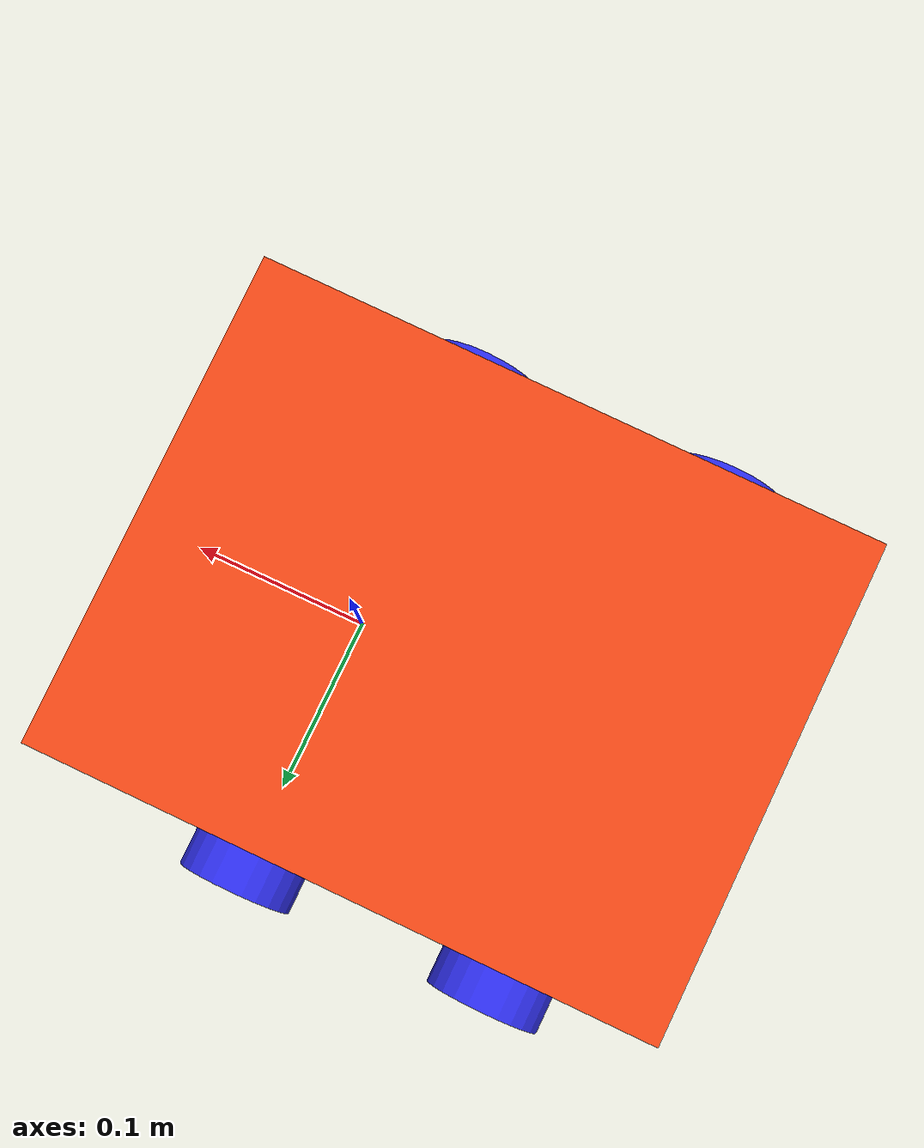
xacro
<?xml version="1.0"?>
<robot xmlns:xacro="http://www.ros.org/wiki/xacro" >

    <xacro:include filename="inertial_macros.xacro"/>

    <xacro:property name="chassis_length" value="0.335"/>
    <xacro:property name="chassis_width" value="0.265"/>
    <xacro:property name="chassis_height" value="0.138"/>
    <xacro:property name="chassis_mass" value="1.0"/>
    <xacro:property name="wheel_radius" value="0.033"/>
    <xacro:property name="wheel_thickness" value="0.026"/>
    <xacro:property name="wheel_mass" value="0.05"/>
    <xacro:property name="wheel_offset_x" value="0.226"/>
    <xacro:property name="wheel_offset_y" value="0.1485"/>
    <xacro:property name="wheel_offset_z" value="0.01"/>
    <xacro:property name="wheel_between_gap" value="-0.15"/>
    <xacro:property name="caster_wheel_radius" value="0.01"/>
    <xacro:property name="caster_wheel_mass" value="0.01"/>
    <xacro:property name="caster_wheel_offset_x" value="0.075"/>
    <xacro:property name="caster_wheel_offset_z" value="${wheel_offset_z - wheel_radius + caster_wheel_radius}"/>

    <material name="white">
        <color rgba="1 1 1 1" />
    </material>

    <material name="orange">
        <color rgba="1 0.3 0.1 1"/>
    </material>

    <material name="blue">
        <color rgba="0.2 0.2 1 1"/>
    </material>

    <material name="black">
        <color rgba="0 0 0 1"/>
    </material>

    <material name="red">
        <color rgba="1 0 0 1"/>
    </material>

    <!-- BASE LINK -->

    <link name="base_link">

    </link>

    <!-- BASE_FOOTPRINT LINK -->
    <joint name="base_footprint_joint" type="fixed">
        <parent link="base_link"/>
        <child link="base_footprint"/>
        <origin xyz="0 0 0" rpy="0 0 0"/>
    </joint>

    <link name="base_footprint">
    </link>

    <!-- CHASSIS LINK -->

    <joint name="chassis_joint" type="fixed">
        <parent link="base_link"/>
        <child link="chassis"/>
        <origin xyz="${-wheel_offset_x} 0 ${-wheel_offset_z}"/>
    </joint>

    <link name="chassis">
        <visual>
            <origin xyz="${chassis_length/2} 0 ${chassis_height/2}"/>
            <geometry>
                <box size="${chassis_length} ${chassis_width} ${chassis_height}"/>
            </geometry>
            <material name="orange"/>
        </visual>
        <collision>
            <origin xyz="${chassis_length/2} 0 ${chassis_height/2}"/>
            <geometry>
                <box size="${chassis_length} ${chassis_width} ${chassis_height}"/>
            </geometry>
        </collision>
        <xacro:inertial_box mass="0.5" x="${chassis_length}" y="${chassis_width}" z="${chassis_height}">
            <origin xyz="${chassis_length/2} 0 ${chassis_height/2}" rpy="0 0 0"/>
        </xacro:inertial_box>
    </link>

    <gazebo reference="chassis">
        <material>Gazebo/Orange</material>
    </gazebo>

    <!-- Wheels -->
    <xacro:include filename = "wheel.xacro" />

    <!-- LEFT WHEEL -->
    <xacro:wheel
        wheel_name="left_front_wheel"
        wheel_radius="${wheel_radius}"
        wheel_thickness="${wheel_thickness}"
        wheel_mass="${wheel_mass}"
        wheel_material="blue"
        xyz="0 ${wheel_offset_y} 0"
        rpy="-${pi/2} 0 0"
        axis="0 0 1"/>

    <xacro:wheel
        wheel_name="left_back_wheel"
        wheel_radius="${wheel_radius}"
        wheel_thickness="${wheel_thickness}"
        wheel_mass="${wheel_mass}"
        wheel_material="blue"
        xyz="${wheel_between_gap} ${wheel_offset_y} 0"
        rpy="-${pi/2} 0 0"
        axis="0 0 1"/>

    <!-- RIGHT WHEEL -->
    <xacro:wheel
        wheel_name="right_front_wheel"
        wheel_radius="${wheel_radius}"
        wheel_thickness="${wheel_thickness}"
        wheel_mass="${wheel_mass}"
        wheel_material="blue"
        xyz="0 ${-wheel_offset_y} 0"
        rpy="${pi/2} 0 0"
        axis="0 0 -1"/>

    <xacro:wheel
        wheel_name="right_back_wheel"
        wheel_radius="${wheel_radius}"
        wheel_thickness="${wheel_thickness}"
        wheel_mass="${wheel_mass}"
        wheel_material="blue"
        xyz="${wheel_between_gap} ${-wheel_offset_y} 0"
        rpy="${pi/2} 0 0"
        axis="0 0 -1"/>

</robot>

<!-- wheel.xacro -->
<robot xmlns:xacro="http://www.ros.org/wiki/xacro">
    <xacro:macro name="wheel" params="wheel_name wheel_radius wheel_thickness wheel_mass wheel_material xyz rpy axis">
        <link name="${wheel_name}">
            <visual>
                <geometry>
                    <cylinder radius="${wheel_radius}" length="${wheel_thickness}"/>
                </geometry>
                <material name="${wheel_material}"/>
            </visual>
            <collision>
                <geometry>
                    <sphere radius="${wheel_radius}"/>
                </geometry>
            </collision>
            <xacro:inertial_cylinder mass="${wheel_mass}" length="${wheel_thickness}" radius="${wheel_radius}">
                <origin xyz="0 0 0" rpy="0 0 0"/>
            </xacro:inertial_cylinder>
        </link>

        <gazebo reference="${wheel_name}">
        <material>Gazebo/Blue</material>
        </gazebo>

        <joint name="${wheel_name}_joint" type="continuous">
            <parent link="base_link"/>
            <child link="${wheel_name}"/>
            <origin xyz="${xyz}" rpy="${rpy}"/>
            <axis xyz="${axis}"/>
        </joint>
    </xacro:macro>
</robot>
